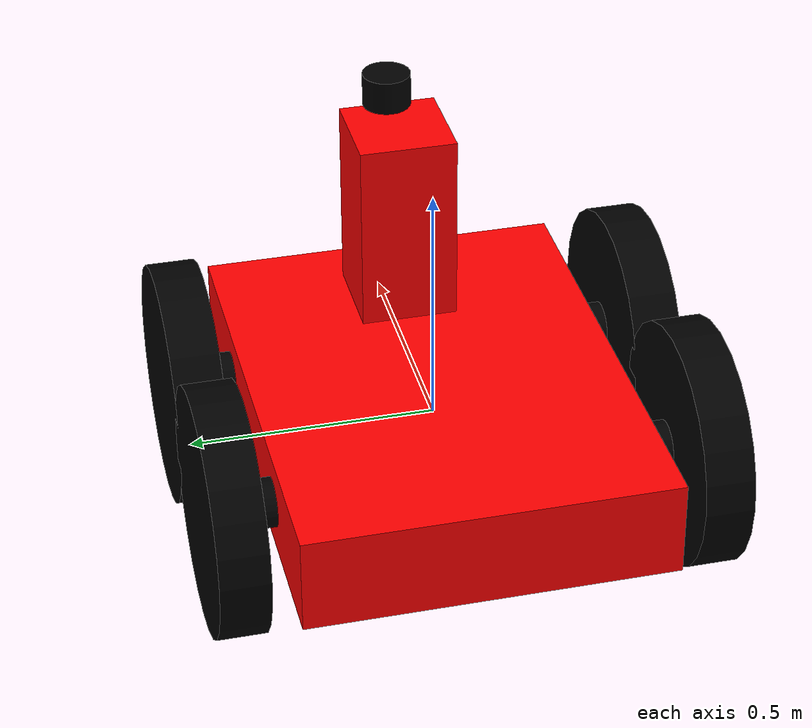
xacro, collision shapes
<?xml version="1.0" ?>

<robot name="robot" xmlns:xacro="http://www.ros.org/wiki/xacro">

    <xacro:include filename="$(find final_project)/urdf/robot.gazebo" />

    <!-- Parameters -->
    <xacro:property name="pi" value="3.1415" />

    <!-- Link - chassis -->
    <link name="link_chassis">
        <inertial>
            <mass value="1" />
            <origin xyz="0 0 0" rpy="0 0 0" />
            <inertia ixx="1.5417" ixy="0" ixz="0" iyy="3.467" iyz="0" izz="4.742" />
        </inertial>

        <collision>
            <geometry>
                <box size="1 0.75 0.2" />
            </geometry>
        </collision>
        <collision>
            <origin rpy="0 0 0" xyz="0.3 0 0.3" />
            <geometry>
                <box size="0.2 0.2 0.4" />
            </geometry>
        </collision>

        <visual>
            <geometry>
                <box size="1 0.75 0.2" />
            </geometry>
            <material name="Red">
                <color rgba="1 0 0 1" />
            </material>
        </visual>
        <visual>
            <origin rpy="0 0 0" xyz="0.4 0 0.3" />
            <geometry>
                <box size="0.2 0.2 0.4" />
            </geometry>
            <material name="Red">
                <color rgba="1 0 0 1" />
            </material>
        </visual>
    </link>

    <!-- Joint - chassis / rear left wheel -->
    <joint name="joint_chassis_rear_left_wheel" type="continuous">
        <origin rpy="0 0 0" xyz="-0.225 0.375 0" />
        <child link="link_rear_left_wheel" />
        <parent link="link_chassis" />
        <axis rpy="0 0 0" xyz="0 1 0" />
        <limit effort="10000" velocity="1000" />
        <joint_properties damping="1.0" friction="1.0" />
    </joint>

    <!-- Link - rear left wheel -->
    <link name="link_rear_left_wheel">
        <inertial>
            <mass value="0.5" />
            <origin xyz="0 0 0" rpy="0 0 0" />
            <inertia ixx="0.002526666666667" ixy="0" ixz="0" iyy="0.002526666666667" iyz="0" izz="0.005"/>
        </inertial>

        <collision>
            <origin rpy="${pi / 2} 0 0" xyz="0 0.1 0" />
            <geometry>
                <cylinder length="0.1" radius="0.25"/>
            </geometry>
        </collision>
        <visual>
            <origin rpy="${pi / 2} 0 0" xyz="0 0.1 0" />
            <geometry>
                <mesh filename="package://robot_description/meshes/wheel.stl" scale="0.5 0.5 0.5" />
            </geometry>
            <material name="Black">
                <color rgba="0 0 0 1" />
            </material>
        </visual>

        <collision>
            <origin rpy="${pi / 2} 0 0" xyz="0 0.0525 0" />
            <geometry>
                <cylinder length="0.105" radius="0.05"/>
            </geometry>
        </collision>
        <visual>
            <origin rpy="${pi / 2} 0 0" xyz="0 0.0525 0" />
            <geometry>
                <cylinder length="0.105" radius="0.05"/>
            </geometry>
            <material name="Black">
                <color rgba="0 0 0 1" />
            </material>
        </visual>

        <collision>
            <origin rpy="${pi} 0 0" xyz="0 0.1 0" />
            <geometry>
                <box size="0.03 0.01 0.3" />
            </geometry>
        </collision>
        <visual>
            <origin rpy="${pi} 0 0" xyz="0 0.1 0" />
            <geometry>
                <box size="0.03 0.01 0.3" />
            </geometry>
            <material name="Black">
                <color rgba="0 0 0 1" />
            </material>
        </visual>

    </link>

    <!-- Joint - chassis / front left wheel -->
    <joint name="joint_chassis_front_left_wheel" type="continuous">
        <origin rpy="0 0 0" xyz="0.225 0.375 0" />
        <child link="link_front_left_wheel" />
        <parent link="link_chassis" />
        <axis rpy="0 0 0" xyz="0 1 0" />
        <limit effort="10000" velocity="1000" />
        <joint_properties damping="1.0" friction="1.0" />
    </joint>

    <!-- Link - front left wheel -->
    <link name="link_front_left_wheel">
        <inertial>
            <mass value="0.5" />
            <origin xyz="0 0 0" rpy="0 0 0" />
            <inertia ixx="0.002526666666667" ixy="0" ixz="0" iyy="0.002526666666667" iyz="0" izz="0.005"/>
        </inertial>

        <collision>
            <origin rpy="${pi / 2} 0 0" xyz="0 0.1 0" />
            <geometry>
                <cylinder length="0.1" radius="0.25"/>
            </geometry>
        </collision>
        <visual>
            <origin rpy="${pi / 2} 0 0" xyz="0 0.1 0" />
            <geometry>
                <mesh filename="package://robot_description/meshes/wheel.stl" scale="0.5 0.5 0.5" />
            </geometry>
            <material name="Black">
                <color rgba="0 0 0 1" />
            </material>
        </visual>

        <collision>
            <origin rpy="${pi / 2} 0 0" xyz="0 0.0525 0" />
            <geometry>
                <cylinder length="0.105" radius="0.05"/>
            </geometry>
        </collision>
        <visual>
            <origin rpy="${pi / 2} 0 0" xyz="0 0.0525 0" />
            <geometry>
                <cylinder length="0.105" radius="0.05"/>
            </geometry>
            <material name="Black">
                <color rgba="0 0 0 1" />
            </material>
        </visual>

        <collision>
            <origin rpy="${pi} 0 0" xyz="0 0.1 0" />
            <geometry>
                <box size="0.03 0.01 0.3" />
            </geometry>
        </collision>
        <visual>
            <origin rpy="${pi} 0 0" xyz="0 0.1 0" />
            <geometry>
                <box size="0.03 0.01 0.3" />
            </geometry>
            <material name="Black">
                <color rgba="0 0 0 1" />
            </material>
        </visual>

    </link>

    <!-- Joint - chassis / rear right wheel -->
    <joint name="joint_chassis_rear_right_wheel" type="continuous">
        <origin rpy="0 0 0" xyz="-0.225 -0.375 0" />
        <child link="link_rear_right_wheel" />
        <parent link="link_chassis" />
        <axis rpy="0 0 0" xyz="0 1 0" />
        <limit effort="10000" velocity="1000" />
        <joint_properties damping="1.0" friction="1.0" />
    </joint>

    <!-- Link - rear right wheel -->
    <link name="link_rear_right_wheel">
        <inertial>
            <mass value="0.5" />
            <origin xyz="0 0 0" rpy="0 0 0" />
            <inertia ixx="0.002526666666667" ixy="0" ixz="0" iyy="0.002526666666667" iyz="0" izz="0.005"/>
        </inertial>

        <collision>
            <origin rpy="${pi / 2} 0 0" xyz="0 -0.1 0" />
            <geometry>
                <cylinder length="0.1" radius="0.25"/>
            </geometry>
        </collision>
        <visual>
            <origin rpy="${pi / 2} 0 0" xyz="0 -0.1 0" />
            <geometry>
                <mesh filename="package://robot_description/meshes/wheel.stl" scale="0.5 0.5 0.5" />
            </geometry>
            <material name="Black">
                <color rgba="0 0 0 1" />
            </material>
        </visual>

        <collision>
            <origin rpy="${pi / 2} 0 0" xyz="0 -0.0525 0" />
            <geometry>
                <cylinder length="0.105" radius="0.05"/>
            </geometry>
        </collision>
        <visual>
            <origin rpy="${pi / 2} 0 0" xyz="0 -0.0525 0" />
            <geometry>
                <cylinder length="0.105" radius="0.05"/>
            </geometry>
            <material name="Black">
                <color rgba="0 0 0 1" />
            </material>
        </visual>

        <collision>
            <origin rpy="${pi} 0 0" xyz="0 -0.1 0" />
            <geometry>
                <box size="0.03 0.01 0.3" />
            </geometry>
        </collision>
        <visual>
            <origin rpy="${pi} 0 0" xyz="0 -0.1 0" />
            <geometry>
                <box size="0.03 0.01 0.3" />
            </geometry>
            <material name="Black">
                <color rgba="0 0 0 1" />
            </material>
        </visual>

    </link>

    <!-- Joint - chassis / front right wheel -->
    <joint name="joint_chassis_front_right_wheel" type="continuous">
        <origin rpy="0 0 0" xyz="0.225 -0.375 0" />
        <child link="link_front_right_wheel" />
        <parent link="link_chassis" />
        <axis rpy="0 0 0" xyz="0 1 0" />
        <limit effort="10000" velocity="1000" />
        <joint_properties damping="1.0" friction="1.0" />
    </joint>

    <!-- Link - front right wheel -->
    <link name="link_front_right_wheel">
        <inertial>
            <mass value="0.5" />
            <origin xyz="0 0 0" rpy="0 0 0" />
            <inertia ixx="0.002526666666667" ixy="0" ixz="0" iyy="0.002526666666667" iyz="0" izz="0.005"/>
        </inertial>

        <collision>
            <origin rpy="${pi / 2} 0 0" xyz="0 -0.1 0" />
            <geometry>
                <cylinder length="0.1" radius="0.25"/>
            </geometry>
        </collision>
        <visual>
            <origin rpy="${pi / 2} 0 0" xyz="0 -0.1 0" />
            <geometry>
                <mesh filename="package://robot_description/meshes/wheel.stl" scale="0.5 0.5 0.5" />
            </geometry>
            <material name="Black">
                <color rgba="0 0 0 1" />
            </material>
        </visual>

        <collision>
            <origin rpy="${pi / 2} 0 0" xyz="0 -0.0525 0" />
            <geometry>
                <cylinder length="0.105" radius="0.05"/>
            </geometry>
        </collision>
        <visual>
            <origin rpy="${pi / 2} 0 0" xyz="0 -0.0525 0" />
            <geometry>
                <cylinder length="0.105" radius="0.05"/>
            </geometry>
            <material name="Black">
                <color rgba="0 0 0 1" />
            </material>
        </visual>

        <collision>
            <origin rpy="${pi} 0 0" xyz="0 -0.1 0" />
            <geometry>
                <box size="0.03 0.01 0.3" />
            </geometry>
        </collision>
        <visual>
            <origin rpy="${pi} 0 0" xyz="0 -0.1 0" />
            <geometry>
                <box size="0.03 0.01 0.3" />
            </geometry>
            <material name="Black">
                <color rgba="0 0 0 1" />
            </material>
        </visual>

    </link>

    <!-- Joint : Laser scan -->
    <joint name="joint_laser_scan_chassis" type="fixed">
        <origin rpy="0 0 0" xyz="0.4 0 0.535" />
        <child link="link_laser_scan" />
        <parent link="link_chassis" />
        <joint_properties damping="1.0" friction="1.0" />
    </joint>

    <!-- Link : Laser scan -->
    <link name="link_laser_scan">
        <inertial>
            <origin xyz="0 0 0" rpy="0 0 0" />
            <mass value="0.25" />
            <inertia ixx="0.000252666666667" ixy="0" ixz="0" iyy="0.000252666666667" iyz="0" izz="0.0005"/>
        </inertial>
        <visual>
            <origin xyz="0 0 0" rpy="0 0 0" />
            <geometry>
                <cylinder radius="0.05" length="0.07"/>
            </geometry>
            <material name="Black">
                <color rgba="0 0 0 1" />
            </material>
        </visual>
        <collision>
            <origin xyz="0 0 0" rpy="0 0 0"/>
            <geometry>
                <cylinder radius="0.05" length="0.07"/>
            </geometry>
        </collision>
    </link>

</robot>
